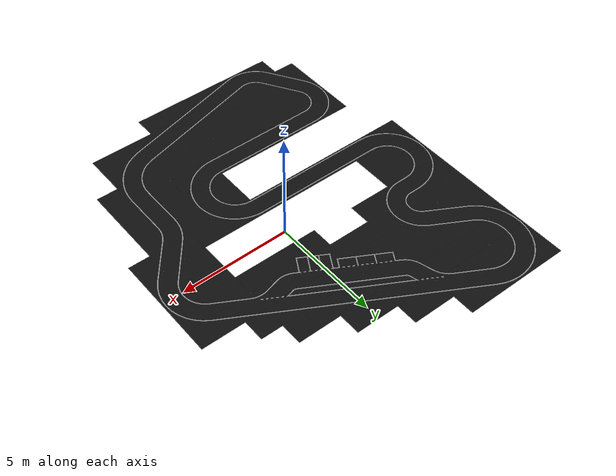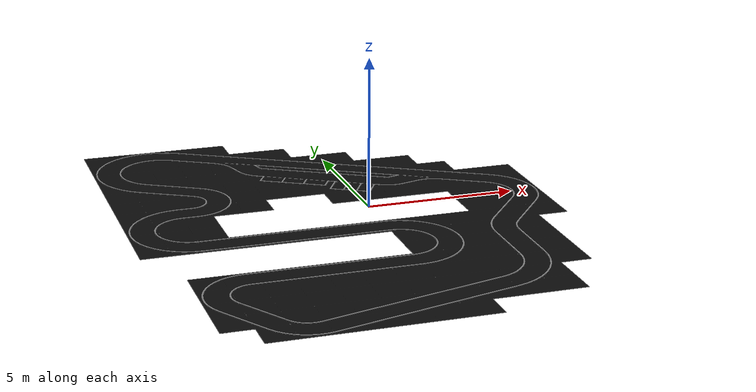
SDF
<?xml version="1.0" ?>
<sdf version="1.6">
  <model name="Dekra_2023">
    <static>true</static>
    <link name="link">
      <collision name="collision">
        <geometry>
          <mesh>
            <uri>model://Dekra_2023/meshes/Dekra_2023.dae</uri>
          </mesh>
        </geometry>
      </collision>
      <visual name="visual">
        <geometry>
          <mesh>
            <uri>model://Dekra_2023/meshes/Dekra_2023.dae</uri>
          </mesh>
        </geometry>
      </visual>
    </link>
  </model>
</sdf>
